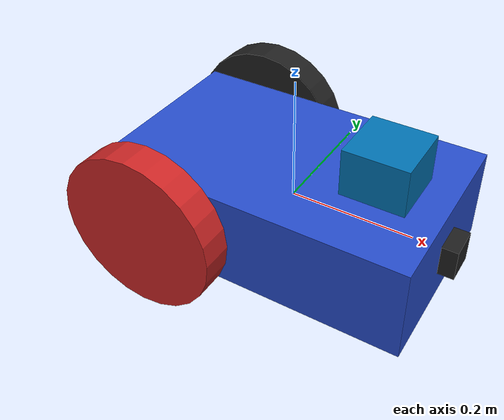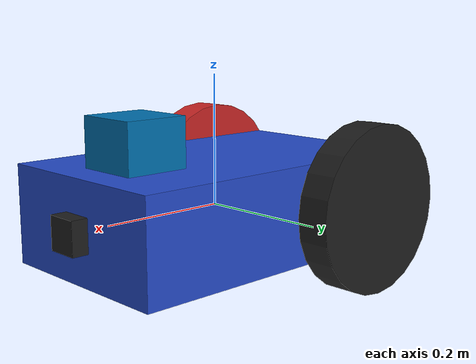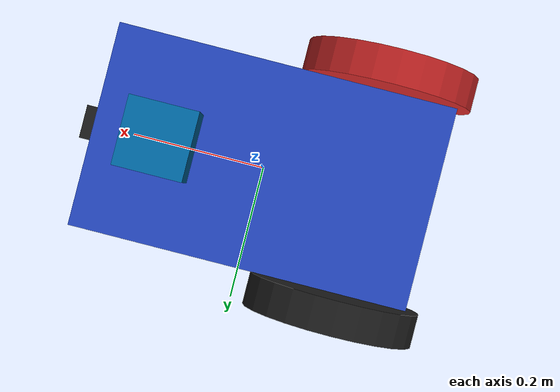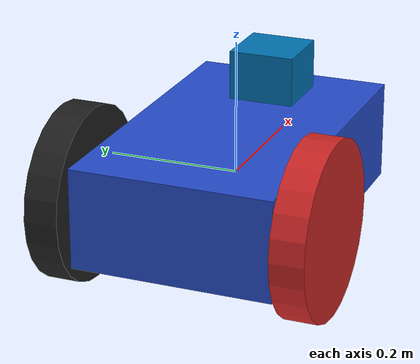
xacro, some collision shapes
<?xml version='1.0'?>

<robot name="my_robot" xmlns:xacro="http://www.ros.org/wiki/xacro">
  <xacro:include filename="$(find my_robot)/urdf/my_robot.gazebo" />
  <link name="robot_footprint"></link>

  <joint name="robot_footprint_joint" type="fixed">
    <origin xyz="0 0 0" rpy="0 0 0" />
    <parent link="robot_footprint"/>
    <child link="chassis" />
  </joint>

  <link name='chassis'>
    <pose>0 0 0.12 0 0 0</pose>

    <inertial>
      <mass value="15.0"/>
      <origin xyz="0.0 0 0" rpy=" 0 0 0"/>
      <inertia
          ixx="0.1" ixy="0" ixz="0"
          iyy="0.1" iyz="0"
          izz="0.1"
      />
    </inertial>

    <collision name='collision'>
      <origin xyz="0 0 0" rpy=" 0 0 0"/>
      <geometry>
        <box size=".5 .3 .15"/>
      </geometry>
    </collision>

    <visual name='chassis_visual'>
      <origin xyz="0 0 0" rpy=" 0 0 0"/>
      <geometry>
        <box size=".5 .3 .15"/>
      </geometry>
     <material name="blue"/>
    </visual>

    <collision name='front_caster_collision'>
      <origin xyz="0.15 0 -0.05" rpy=" 0 0 0"/>
      <geometry>
        <sphere radius="0.06"/>
      </geometry>
    </collision>

    <visual name='front_caster_visual'>
      <origin xyz="0.15 0 -0.05" rpy=" 0 0 0"/>
      <geometry>
        <sphere radius="0.06"/>
      </geometry>
    </visual>

  </link>

  <link name="left_wheel">
        <visual>
         <origin xyz="0 0 0" rpy="0 1.5707 1.5707"/>
          <geometry>
             <cylinder radius="0.13" length="0.05"/>
          </geometry>
        </visual>

       <inertial>
         <mass value="5.0"/>
         <origin xyz="0 0 0" rpy="0 1.5707 1.5707"/>
         <inertia
          ixx="0.1" ixy="0" ixz="0"
          iyy="0.1" iyz="0"
          izz="0.1"/>
         </inertial>
        <collision>
	      <origin xyz="0 0 0" rpy="0 1.5707 1.5707"/>
	  <geometry>
             <cylinder radius="0.13" length="0.05"/>
          </geometry>
	</collision>
     </link>

  <joint type="continuous" name="left_wheel_hinge">
    <origin xyz="-0.15 0.18 0" rpy="0 0 0"/>
    <child link="left_wheel"/>
    <parent link="chassis"/>
    <axis xyz="0 1 0" rpy="0 0 0"/>
    <limit effort="10000" velocity="1000"/>
    <dynamics damping="1.0" friction="1.0"/>
  </joint>

  <link name="right_wheel">
        <visual>
         <origin xyz="0 0 0" rpy="0 1.5707 1.5707"/>
          <geometry>
             <cylinder radius="0.13" length="0.05"/>
          </geometry>
        <material name="red"/>
        </visual>

       <inertial>
         <mass value="5.0"/>
         <origin xyz="0 0 0" rpy="0 1.5707 1.5707"/>
         <inertia
          ixx="0.1" ixy="0" ixz="0"
          iyy="0.1" iyz="0"
          izz="0.1"/>
         </inertial>
        <collision>
	      <origin xyz="0 0 0" rpy="0 1.5707 1.5707"/>
	  <geometry>
             <cylinder radius="0.13" length="0.05"/>
          </geometry>
	</collision>
     </link>

  <joint type="continuous" name="right_wheel_hinge">
    <origin xyz="-0.15 -0.18 0" rpy="0 0 0"/>
    <child link="right_wheel"/>
    <parent link="chassis"/>
    <axis xyz="0 1 0" rpy="0 0 0"/>
    <limit effort="10000" velocity="1000"/>
    <dynamics damping="1.0" friction="1.0"/>
  </joint>

  <link name='hokuyo'>
    <pose>0 0 0 0 0 0</pose>
    <inertial>
      <mass value="0.1"/>
      <origin xyz="0 0 0" rpy=" 0 0 0"/>
      <inertia
          ixx="1e-6" ixy="0" ixz="0"
          iyy="1e-6" iyz="0"
          izz="1e-6" />
    </inertial>
    <collision name='hokuyo_collision'>
      <origin xyz="0 0 0" rpy="0 0 0"/>
      <geometry>
        <box size="0.1 0.1 0.1"/>
      </geometry>
    </collision>
    <visual name='hokuyo_visual'>
      <origin xyz="0 0 0" rpy=" 0 0 0"/>
      <geometry>
        <mesh filename="package://my_robot/meshes/hokuyo.dae"/>
      </geometry>
    </visual>
  </link>

  <joint type="fixed" name="hokuyo_joint">
    <origin xyz="0.15 0 0.1" rpy="0 0 0"/>
    <child link="hokuyo"/>
    <parent link="chassis"/>
  </joint>

  <link name="camera">
        <visual>
         <origin xyz="0 0 0" rpy="0 0 0"/>
          <geometry>
             <box size="0.05 0.05 0.05"/>
          </geometry>
        <material name="black"/>
        </visual>

       <inertial>
         <mass value="0.1"/>
         <origin xyz="0 0 0" rpy="0 0 0"/>
         <inertia
          ixx="1e-6" ixy="0" ixz="0"
          iyy="1e-6" iyz="0"
          izz="1e-6"/>
         </inertial>

     </link>

  <joint type="fixed" name="camera_joint">
    <origin xyz="0.25 0 0" rpy="0 0 0"/>
    <child link="camera"/>
    <parent link="chassis"/>
  </joint>

</robot>
